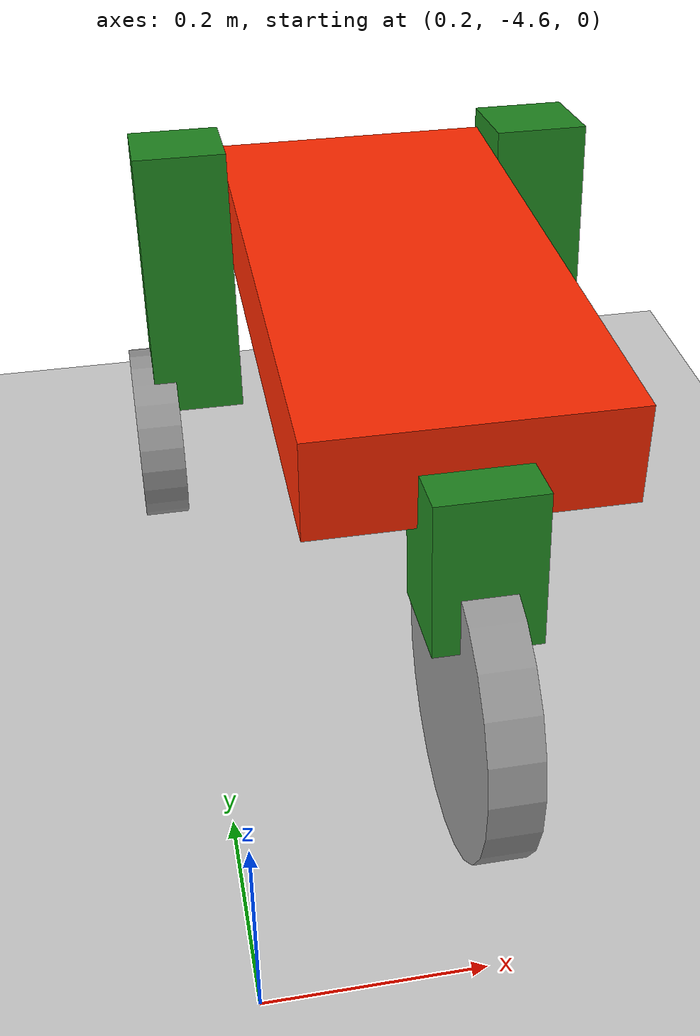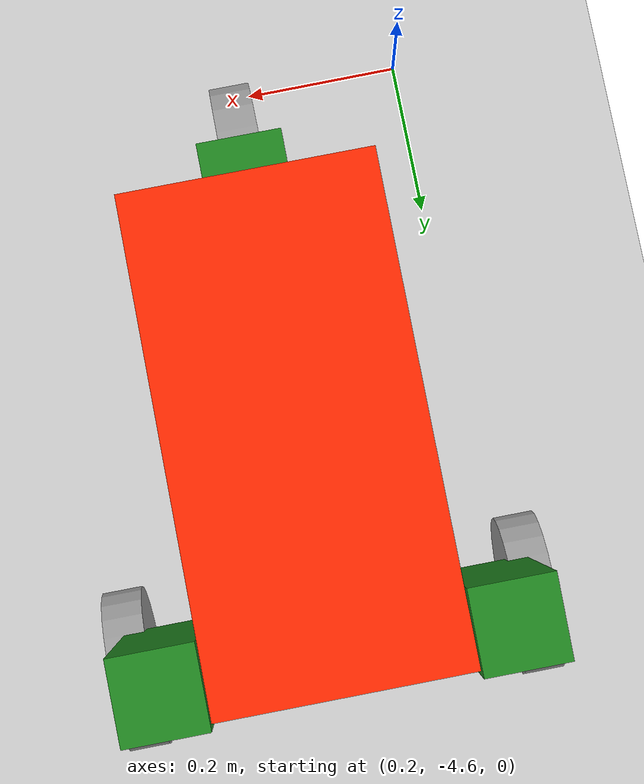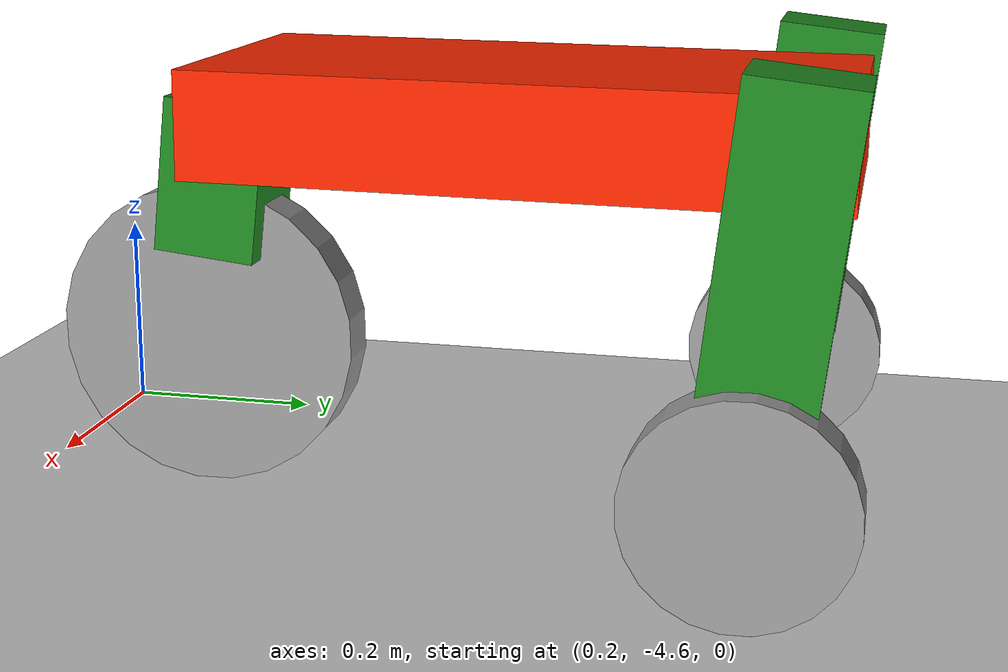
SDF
<sdf version="1.7">
 <world name="default">
  <model name="ground_plane">
   <static>1</static>
   <link name="link">
    <collision name="collision">
     <geometry><plane><normal>0 0 1</normal><size>100 100</size></plane></geometry>
     <surface>
      <contact><collide_bitmask>65535</collide_bitmask></contact>
      <friction><ode><mu>100</mu><mu2>50</mu2></ode></friction>
     </surface>
    </collision>
    <visual name="visual">
     <cast_shadows>0</cast_shadows>
     <geometry><plane><normal>0 0 1</normal><size>100 100</size></plane></geometry>
     <material>
      <script><uri>file://media/materials/scripts/gazebo.material</uri><name>Gazebo/Grey</name></script>
     </material>
    </visual>
   </link>
  </model>
  <model name="Three-Wheels-Robot">
   <link name="link_0">
    <inertial>
     <mass>1</mass>
     <inertia>
      <ixx>0.166667</ixx>
      <ixy>0</ixy>
      <ixz>0</ixz>
      <iyy>0.166667</iyy>
      <iyz>0</iyz>
      <izz>0.166667</izz>
     </inertia>
    </inertial>
    <pose>0.05 -0 0.195 0 -0 0</pose>
    <visual name="ModelPreview_0::link_0::visual_1">
     <pose>-0.25 0.2 -0.05 0 -0 0</pose>
     <geometry><box><size>0.1 0.1 0.3</size></box></geometry>
     <material>
      <lighting>1</lighting>
      <script><uri>file://media/materials/scripts/gazebo.material</uri><name>Gazebo/Grey</name></script>
      <shader type="pixel"><normal_map>__default__</normal_map></shader>
      <ambient>0.13 0.54 0.13 1</ambient>
      <diffuse>0.7 0.7 0.7 1</diffuse>
      <specular>0.01 0.01 0.01 1</specular>
      <emissive>0 0 0 1</emissive>
     </material>
    </visual>
    <visual name="ModelPreview_0::link_0::visual_3">
     <pose>0.3 0 -0.1 0 -0 0</pose>
     <geometry><box><size>0.1 0.1 0.15</size></box></geometry>
     <material>
      <lighting>1</lighting>
      <script><uri>file://media/materials/scripts/gazebo.material</uri><name>Gazebo/Grey</name></script>
      <shader type="pixel"><normal_map>__default__</normal_map></shader>
      <ambient>0.13 0.54 0.13 1</ambient>
      <diffuse>0.7 0.7 0.7 1</diffuse>
      <specular>0.01 0.01 0.01 1</specular>
      <emissive>0 0 0 1</emissive>
     </material>
    </visual>
    <visual name="visual">
     <pose>0 0 0 0 0.1 0</pose>
     <geometry><box><size>0.6 0.3 0.1</size></box></geometry>
     <material>
      <lighting>1</lighting>
      <script><uri>file://media/materials/scripts/gazebo.material</uri><name>Gazebo/Grey</name></script>
      <shader type="pixel"><normal_map>__default__</normal_map></shader>
      <ambient>1 0.16 0 1</ambient>
      <diffuse>0.7 0.7 0.7 1</diffuse>
      <specular>0.01 0.01 0.01 1</specular>
      <emissive>0 0 0 1</emissive>
     </material>
    </visual>
    <visual name="ModelPreview_0::link_0::visual_2">
     <pose>-0.25 -0.2 -0.05 0 -0 0</pose>
     <geometry><box><size>0.1 0.1 0.3</size></box></geometry>
     <material>
      <lighting>1</lighting>
      <script><uri>file://media/materials/scripts/gazebo.material</uri><name>Gazebo/Grey</name></script>
      <shader type="pixel"><normal_map>__default__</normal_map></shader>
      <ambient>0.13 0.54 0.13 1</ambient>
      <diffuse>0.7 0.7 0.7 1</diffuse>
      <specular>0.01 0.01 0.01 1</specular>
      <emissive>0 0 0 1</emissive>
     </material>
    </visual>
    <collision name="collision">
     <pose>0 0 -0.1 0 -0 0</pose>
     <geometry><box><size>0.65 0.6 0.35</size></box></geometry>
     <surface>
      <friction>
       <ode><mu>1</mu><mu2>1</mu2><fdir1>0 0 0</fdir1><slip1>0</slip1><slip2>0</slip2></ode>
       <torsional>
        <coefficient>1</coefficient>
        <patch_radius>0</patch_radius>
        <surface_radius>0</surface_radius>
        <use_patch_radius>1</use_patch_radius>
        <ode><slip>0</slip></ode>
       </torsional>
      </friction>
      <bounce><restitution_coefficient>0</restitution_coefficient><threshold>1e+06</threshold></bounce>
      <contact>
       <collide_without_contact>0</collide_without_contact>
       <collide_without_contact_bitmask>1</collide_without_contact_bitmask>
       <collide_bitmask>1</collide_bitmask>
       <ode>
        <soft_cfm>0</soft_cfm>
        <soft_erp>0.2</soft_erp>
        <kp>1e+13</kp>
        <kd>1</kd>
        <max_vel>0.01</max_vel>
        <min_depth>0</min_depth>
       </ode>
       <bullet>
        <split_impulse>1</split_impulse>
        <split_impulse_penetration_threshold>-0.01</split_impulse_penetration_threshold>
        <soft_cfm>0</soft_cfm>
        <soft_erp>0.2</soft_erp>
        <kp>1e+13</kp>
        <kd>1</kd>
       </bullet>
      </contact>
     </surface>
    </collision>
   </link>
   <link name="link_2">
    <inertial>
     <mass>1</mass>
     <inertia><ixx>0.145833</ixx><ixy>0</ixy><ixz>0</ixz><iyy>0.145833</iyy><iyz>0</iyz><izz>0.125</izz></inertia>
    </inertial>
    <pose>-0.2 -0.25 -0.055 0 -0 0</pose>
    <visual name="visual">
     <pose>0 0 0 1.5707 -0 0</pose>
     <geometry><cylinder><radius>0.1</radius><length>0.05</length></cylinder></geometry>
     <material>
      <lighting>1</lighting>
      <script><uri>file://media/materials/scripts/gazebo.material</uri><name>Gazebo/Grey</name></script>
      <shader type="pixel"><normal_map>__default__</normal_map></shader>
      <ambient>0.3 0.3 0.3 1</ambient>
      <diffuse>0.7 0.7 0.7 1</diffuse>
      <specular>0.01 0.01 0.01 1</specular>
      <emissive>0 0 0 1</emissive>
     </material>
    </visual>
    <collision name="collision">
     <pose>0 0 0 1.5707 -0 0</pose>
     <geometry><cylinder><radius>0.1</radius><length>0.05</length></cylinder></geometry>
     <surface>
      <friction>
       <ode><mu>1</mu><mu2>1</mu2><fdir1>0 0 0</fdir1><slip1>0</slip1><slip2>0</slip2></ode>
       <torsional>
        <coefficient>1</coefficient>
        <patch_radius>0</patch_radius>
        <surface_radius>0</surface_radius>
        <use_patch_radius>1</use_patch_radius>
        <ode><slip>0</slip></ode>
       </torsional>
      </friction>
      <bounce><restitution_coefficient>0</restitution_coefficient><threshold>1e+06</threshold></bounce>
      <contact>
       <collide_without_contact>0</collide_without_contact>
       <collide_without_contact_bitmask>1</collide_without_contact_bitmask>
       <collide_bitmask>1</collide_bitmask>
       <ode>
        <soft_cfm>0</soft_cfm>
        <soft_erp>0.2</soft_erp>
        <kp>1e+13</kp>
        <kd>1</kd>
        <max_vel>0.01</max_vel>
        <min_depth>0</min_depth>
       </ode>
       <bullet>
        <split_impulse>1</split_impulse>
        <split_impulse_penetration_threshold>-0.01</split_impulse_penetration_threshold>
        <soft_cfm>0</soft_cfm>
        <soft_erp>0.2</soft_erp>
        <kp>1e+13</kp>
        <kd>1</kd>
       </bullet>
      </contact>
     </surface>
    </collision>
   </link>
   <link name="link_2_clone">
    <inertial>
     <mass>1</mass>
     <inertia><ixx>0.145833</ixx><ixy>0</ixy><ixz>0</ixz><iyy>0.145833</iyy><iyz>0</iyz><izz>0.125</izz></inertia>
    </inertial>
    <pose>-0.2 0.25 -0.055 0 -0 0</pose>
    <visual name="visual">
     <pose>0 0 0 1.5707 -0 0</pose>
     <geometry><cylinder><radius>0.1</radius><length>0.05</length></cylinder></geometry>
     <material>
      <lighting>1</lighting>
      <script><uri>file://media/materials/scripts/gazebo.material</uri><name>Gazebo/Grey</name></script>
      <shader type="pixel"><normal_map>__default__</normal_map></shader>
      <ambient>0.3 0.3 0.3 1</ambient>
      <diffuse>0.7 0.7 0.7 1</diffuse>
      <specular>0.01 0.01 0.01 1</specular>
      <emissive>0 0 0 1</emissive>
     </material>
    </visual>
    <collision name="collision">
     <pose>0 0 0 1.5707 -0 0</pose>
     <geometry><cylinder><radius>0.1</radius><length>0.05</length></cylinder></geometry>
     <surface>
      <friction>
       <ode><mu>1</mu><mu2>1</mu2><fdir1>0 0 0</fdir1><slip1>0</slip1><slip2>0</slip2></ode>
       <torsional>
        <coefficient>1</coefficient>
        <patch_radius>0</patch_radius>
        <surface_radius>0</surface_radius>
        <use_patch_radius>1</use_patch_radius>
        <ode><slip>0</slip></ode>
       </torsional>
      </friction>
      <bounce><restitution_coefficient>0</restitution_coefficient><threshold>1e+06</threshold></bounce>
      <contact>
       <collide_without_contact>0</collide_without_contact>
       <collide_without_contact_bitmask>1</collide_without_contact_bitmask>
       <collide_bitmask>1</collide_bitmask>
       <ode>
        <soft_cfm>0</soft_cfm>
        <soft_erp>0.2</soft_erp>
        <kp>1e+13</kp>
        <kd>1</kd>
        <max_vel>0.01</max_vel>
        <min_depth>0</min_depth>
       </ode>
       <bullet>
        <split_impulse>1</split_impulse>
        <split_impulse_penetration_threshold>-0.01</split_impulse_penetration_threshold>
        <soft_cfm>0</soft_cfm>
        <soft_erp>0.2</soft_erp>
        <kp>1e+13</kp>
        <kd>1</kd>
       </bullet>
      </contact>
     </surface>
    </collision>
   </link>
   <link name="link_2_clone_0">
    <inertial>
     <mass>1</mass>
     <inertia><ixx>0.145833</ixx><ixy>0</ixy><ixz>0</ixz><iyy>0.145833</iyy><iyz>0</iyz><izz>0.125</izz></inertia>
    </inertial>
    <pose>0.35 -0 -0.085 0 -0 0</pose>
    <visual name="visual">
     <pose>0 0 0.02 1.5707 -0 0</pose>
     <geometry><cylinder><radius>0.15</radius><length>0.05</length></cylinder></geometry>
     <material>
      <lighting>1</lighting>
      <script><uri>file://media/materials/scripts/gazebo.material</uri><name>Gazebo/Grey</name></script>
      <shader type="pixel"><normal_map>__default__</normal_map></shader>
      <ambient>0.3 0.3 0.3 1</ambient>
      <diffuse>0.7 0.7 0.7 1</diffuse>
      <specular>0.01 0.01 0.01 1</specular>
      <emissive>0 0 0 1</emissive>
     </material>
    </visual>
    <collision name="collision">
     <pose>0 0 0.02 1.5707 -0 0</pose>
     <geometry><cylinder><radius>0.15</radius><length>0.05</length></cylinder></geometry>
     <surface>
      <friction>
       <ode><mu>1</mu><mu2>1</mu2><fdir1>0 0 0</fdir1><slip1>0</slip1><slip2>0</slip2></ode>
       <torsional>
        <coefficient>1</coefficient>
        <patch_radius>0</patch_radius>
        <surface_radius>0</surface_radius>
        <use_patch_radius>1</use_patch_radius>
        <ode><slip>0</slip></ode>
       </torsional>
      </friction>
      <bounce><restitution_coefficient>0</restitution_coefficient><threshold>1e+06</threshold></bounce>
      <contact>
       <collide_without_contact>0</collide_without_contact>
       <collide_without_contact_bitmask>1</collide_without_contact_bitmask>
       <collide_bitmask>1</collide_bitmask>
       <ode>
        <soft_cfm>0</soft_cfm>
        <soft_erp>0.2</soft_erp>
        <kp>1e+13</kp>
        <kd>1</kd>
        <max_vel>0.01</max_vel>
        <min_depth>0</min_depth>
       </ode>
       <bullet>
        <split_impulse>1</split_impulse>
        <split_impulse_penetration_threshold>-0.01</split_impulse_penetration_threshold>
        <soft_cfm>0</soft_cfm>
        <soft_erp>0.2</soft_erp>
        <kp>1e+13</kp>
        <kd>1</kd>
       </bullet>
      </contact>
     </surface>
    </collision>
   </link>
   <joint name="link_0_JOINT_0" type="revolute">
    <parent>link_0</parent>
    <child>link_2</child>
    <axis>
     <xyz>0 1 0</xyz>
     <limit>
      <lower>-1.79769e+308</lower>
      <upper>1.79769e+308</upper>
      <effort>-1</effort>
      <velocity>-1</velocity>
     </limit>
     <dynamics>
      <spring_reference>0</spring_reference>
      <spring_stiffness>0</spring_stiffness>
      <damping>0</damping>
      <friction>0</friction>
     </dynamics>
    </axis>
    <physics>
     <ode><limit><cfm>0</cfm><erp>0.2</erp></limit><suspension><cfm>0</cfm><erp>0.2</erp></suspension></ode>
    </physics>
   </joint>
   <joint name="link_0_JOINT_1" type="revolute">
    <parent>link_0</parent>
    <child>link_2_clone</child>
    <axis>
     <xyz>0 -1 0</xyz>
     <limit>
      <lower>-1.79769e+308</lower>
      <upper>1.79769e+308</upper>
      <effort>-1</effort>
      <velocity>-1</velocity>
     </limit>
     <dynamics>
      <spring_reference>0</spring_reference>
      <spring_stiffness>0</spring_stiffness>
      <damping>0</damping>
      <friction>0</friction>
     </dynamics>
    </axis>
    <physics>
     <ode><limit><cfm>0</cfm><erp>0.2</erp></limit><suspension><cfm>0</cfm><erp>0.2</erp></suspension></ode>
    </physics>
   </joint>
   <joint name="link_0_JOINT_2" type="revolute">
    <parent>link_0</parent>
    <child>link_2_clone_0</child>
    <axis>
     <xyz>0 1 0</xyz>
     <limit>
      <lower>-1.79769e+308</lower>
      <upper>1.79769e+308</upper>
      <effort>-1</effort>
      <velocity>-1</velocity>
     </limit>
     <dynamics>
      <spring_reference>0</spring_reference>
      <spring_stiffness>0</spring_stiffness>
      <damping>0</damping>
      <friction>0</friction>
     </dynamics>
    </axis>
    <physics>
     <ode><limit><cfm>0</cfm><erp>0.2</erp></limit><suspension><cfm>0</cfm><erp>0.2</erp></suspension></ode>
    </physics>
   </joint>
   <static>0</static>
   <pose>0.426054 -4.06316 0.176499 3e-06 -0.109346 -1.57321</pose>
  </model>
 </world>
</sdf>
